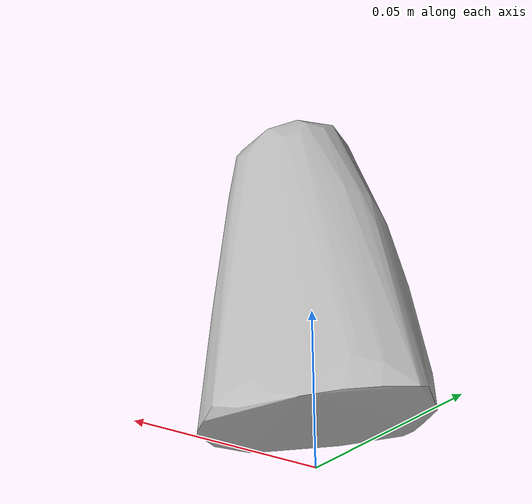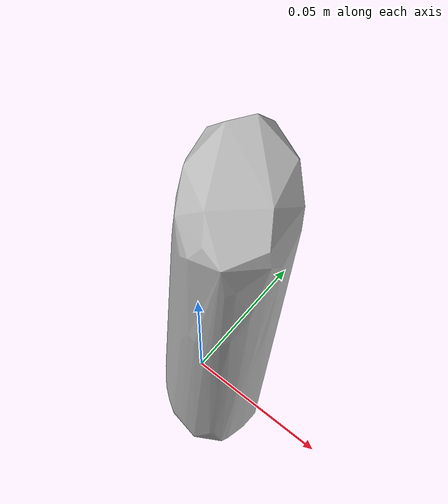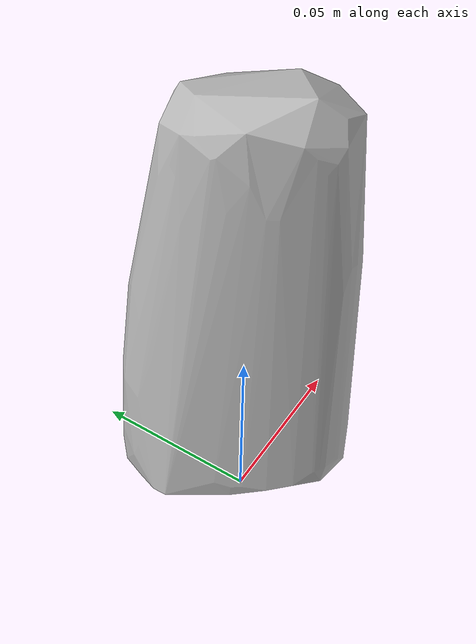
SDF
<?xml version='1.0'?>
<sdf version="1.4">
  <model name="colgate_cool_mint">
    <static>false</static>
    <link name="link">
      <inertial>
        <pose>0.006731969274431048 0.004578335657838646 0.05640620710955735 3.081163444348626 -0.06461270773151932 -2.526083119796015</pose>
        <mass>0.02503643830197873</mass>
        <inertia>
          <ixx>2.2228520955730616e-05</ixx>
          <ixy>-3.0771382030206036e-21</ixy>
          <ixz>1.2292915966830566e-21</ixz>
          <iyy>1.9368121461661046e-05</iyy>
          <iyz>-2.3799615560446494e-21</iyz>
          <izz>5.4071911974725205e-06</izz>
        </inertia>
      </inertial>
      <collision name="collision">
        <geometry>
          <mesh>
            <!-- Use a downsampled mesh for collisions -->
            <uri>model:///colgate_cool_mint/colgate_cool_mint_250_collision.obj</uri>
	        </mesh>
        </geometry>
        <surface>
      </surface>
      </collision>
      <visual name="visual">
        <geometry>
          <mesh>
            <uri>model:///colgate_cool_mint/optimized_tsdf_texture_mapped_mesh.obj</uri>
	        </mesh>
        </geometry>
        <material>
          <script>
            <uri>model:///colgate_cool_mint/colgate_cool_mint.material</uri>
            <name>colgate_cool_mint</name>
          </script>
        </material>
      </visual>
    </link>
  </model>
</sdf>
